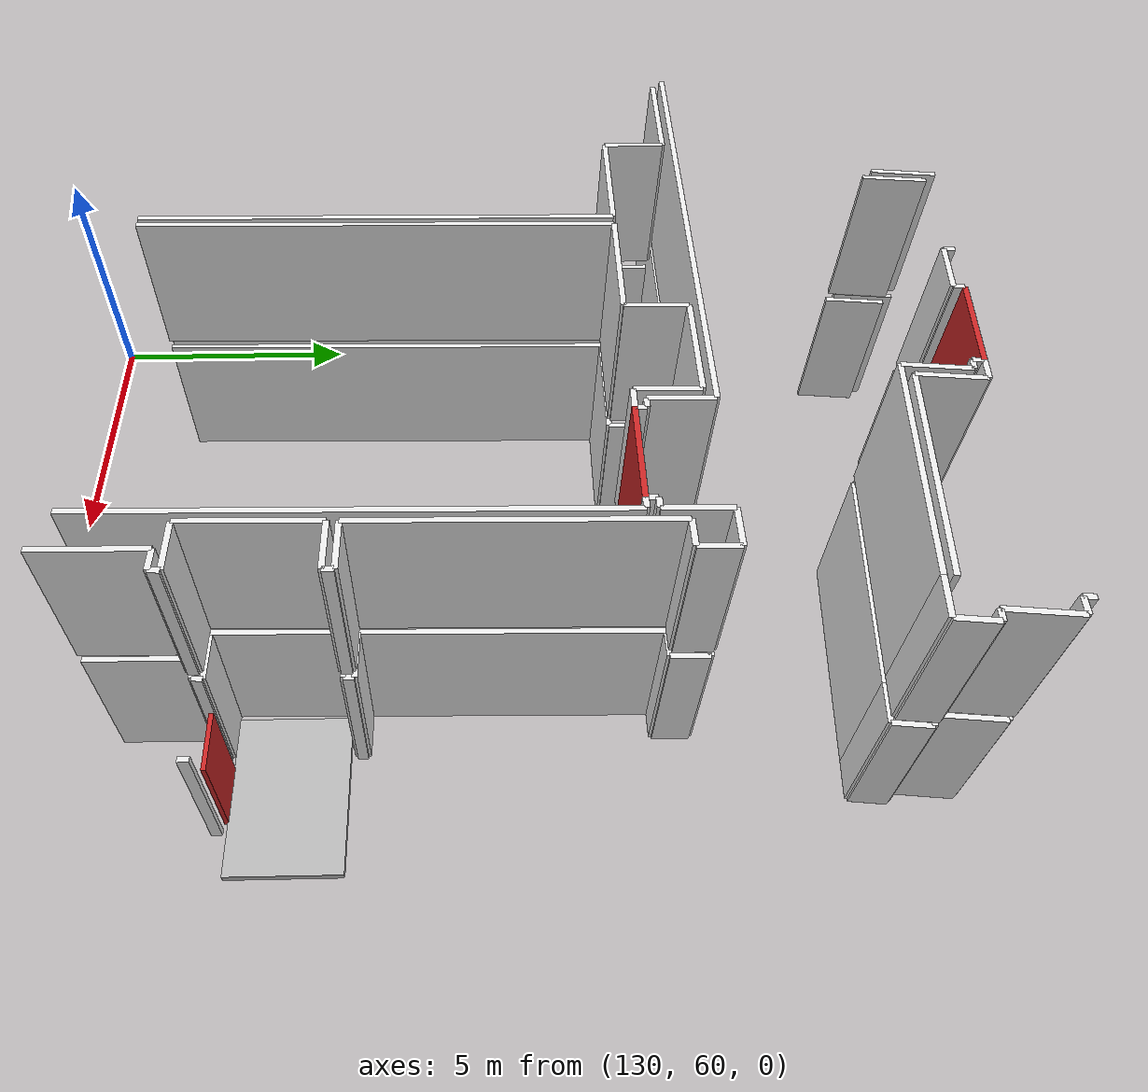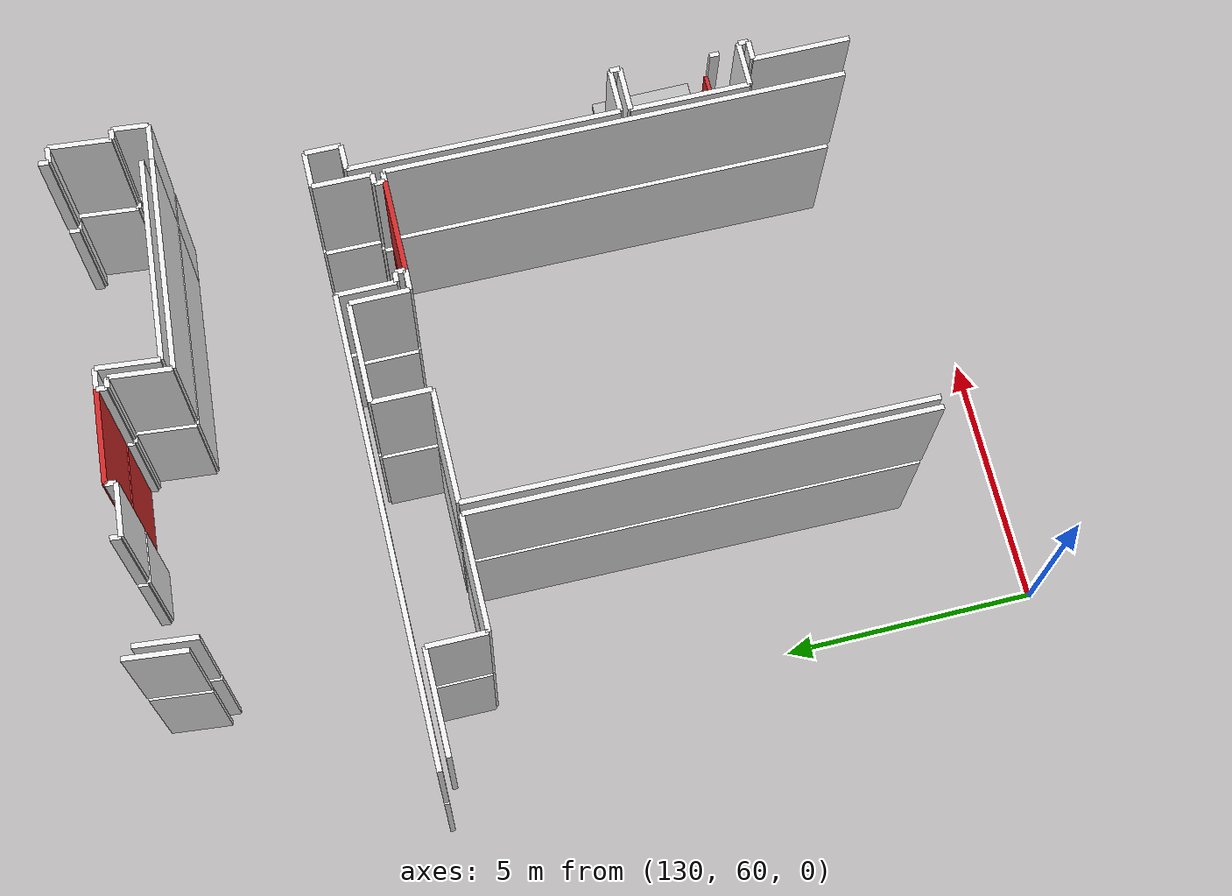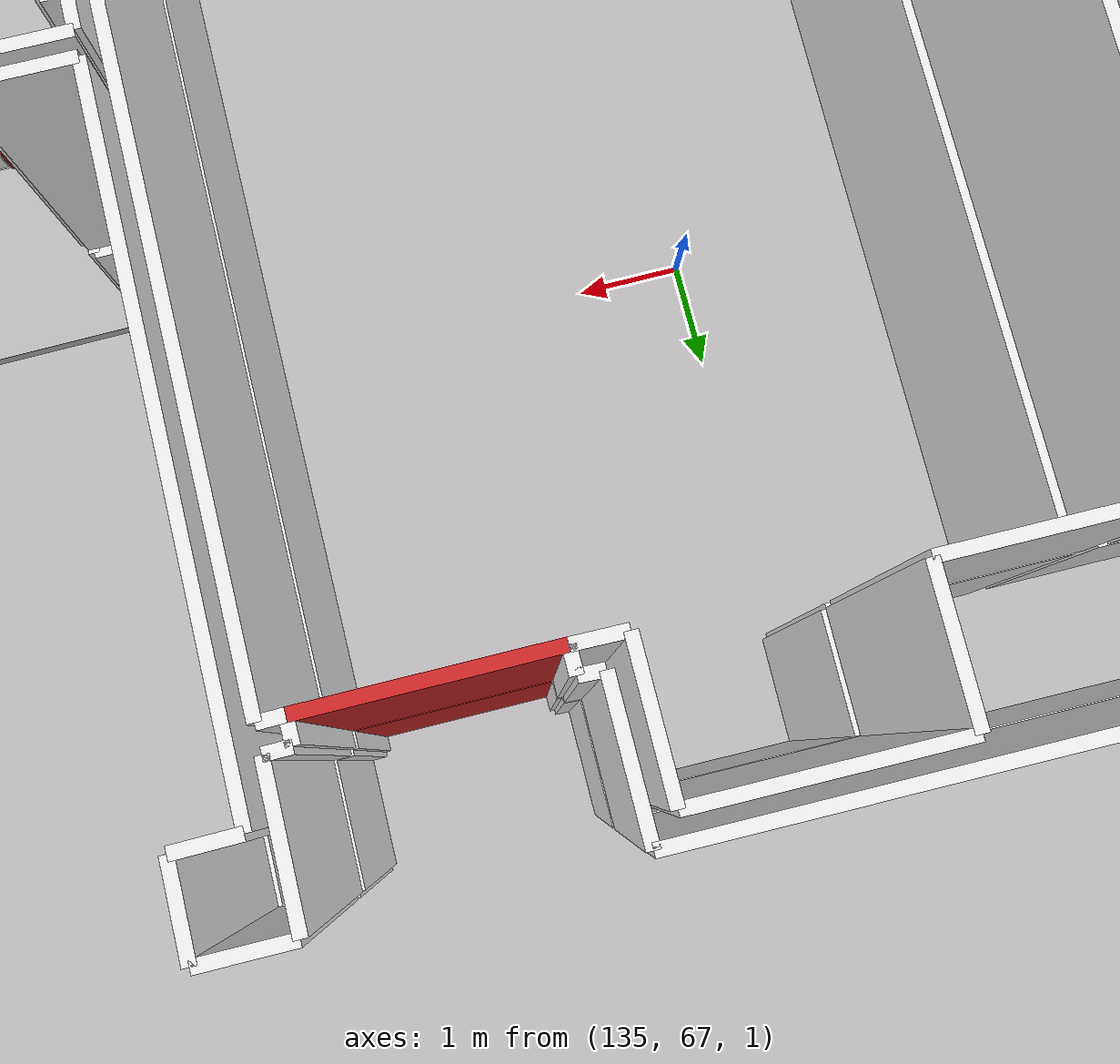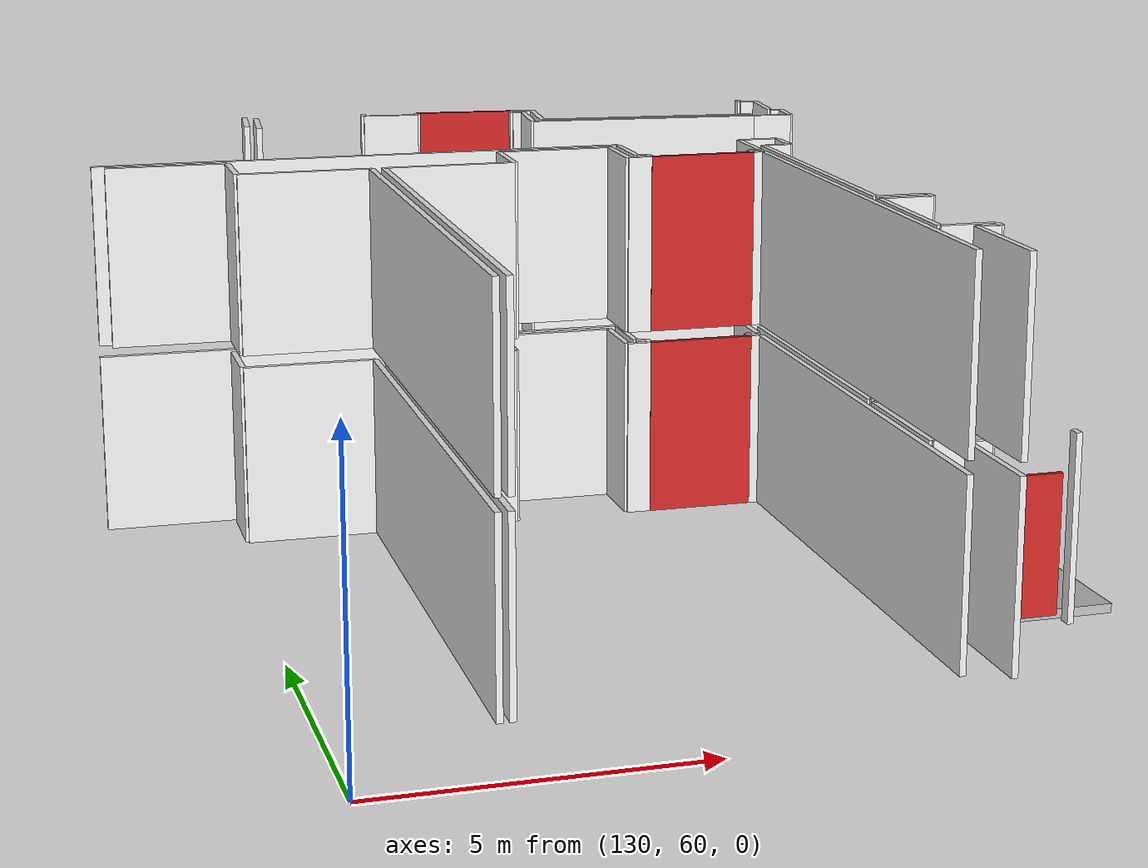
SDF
<sdf version="1.6">
 <world name="default">
  <model name="elevator">
   <pose>141.07 64.822 0.075 0 0 -1.5708</pose>
   <link name="link">
    <inertial><mass>800</mass></inertial>
    <collision name="floor_collision"><geometry><box><size>2.10 2.91 0.15</size></box></geometry></collision>
    <visual name="floor_visual"><geometry><box><size>2.10 2.91 0.15</size></box></geometry></visual>
   </link>
   <link name="door">
    <pose>1.0745 0 1.125 0 0 0</pose>
    <collision name="collision"><geometry><box><size>0.08 1.0 2.25</size></box></geometry></collision>
    <visual name="visual">
     <geometry><box><size>0.08 1.0 2.25</size></box></geometry>
     <material><script><name>Gazebo/Red</name></script></material>
    </visual>
   </link>
   <joint name="door_joint" type="prismatic">
    <parent>link</parent>
    <child>door</child>
    <axis>
     <xyz>0 1 0</xyz>
     <limit><lower>0</lower><upper>1</upper><effort>10</effort></limit>
     <dynamics><damping>2</damping></dynamics>
    </axis>
   </joint>
   <joint name="lift_joint" type="prismatic">
    <parent>world</parent>
    <child>link</child>
    <axis>
     <xyz>0 0 1</xyz>
     <limit><lower>0</lower><upper>10</upper><effort>100000</effort></limit>
     <dynamics><damping>50</damping></dynamics>
    </axis>
    <physics><ode><implicit_spring_damper>1</implicit_spring_damper></ode></physics>
   </joint>
   <plugin filename="libgazebo_ros_elevator.so" name="elevator_plugin">
    <lift_joint>elevator::lift_joint</lift_joint>
    <door_joint>elevator::door_joint</door_joint>
    <floor_height>3.075</floor_height>
    <door_wait_time>5</door_wait_time>
    <topic>/elevator</topic>
   </plugin>
  </model>
  <model name="wall_135.5_76.8_0.0">
   <static>true</static>
   <pose>135.49499999999534 76.79000000003725 1.5 0 0 -0.10022174961299568</pose>
   <link name="link">
    <visual name="visual">
     <geometry><box><size>1.799027515083101 0.1 3</size></box></geometry>
     <material>
      <script><uri>file://media/materials/scripts/gazebo.material</uri><name>Gazebo/Red</name></script>
     </material>
    </visual>
   </link>
  </model>
  <model name="wall_138.2_70.8_0.0">
   <static>true</static>
   <pose>138.2149999999965 70.78000000002794 1.5 0 0 -0.01104927408967263</pose>
   <link name="link">
    <visual name="visual">
     <geometry><box><size>1.810110493862824 0.1 3</size></box></geometry>
     <material>
      <script><uri>file://media/materials/scripts/gazebo.material</uri><name>Gazebo/Red</name></script>
     </material>
    </visual>
   </link>
  </model>
  <model name="wall_134.4_76.9_0.0">
   <static>true</static>
   <pose>134.39999999999418 76.89999999990687 1.5 0 0 3.0419240009977764</pose>
   <link name="link">
    <visual name="visual">
     <geometry><box><size>0.4019950248137912 0.1 3</size></box></geometry>
     <material>
      <script><uri>file://media/materials/scripts/gazebo.material</uri><name>Gazebo/White</name></script>
     </material>
    </visual>
   </link>
  </model>
  <model name="wall_138.6_75.3_0.0">
   <static>true</static>
   <pose>138.63999999998487 75.26000000000931 1.5 0 0 3.0404164645756886</pose>
   <link name="link">
    <visual name="visual">
     <geometry><box><size>3.9602525171943066 0.1 3</size></box></geometry>
     <material>
      <script><uri>file://media/materials/scripts/gazebo.material</uri><name>Gazebo/White</name></script>
     </material>
    </visual>
   </link>
  </model>
  <model name="wall_136.7_76.1_0.0">
   <static>true</static>
   <pose>136.72999999998137 76.06000000005588 1.5 0 0 1.4711276743229451</pose>
   <link name="link">
    <visual name="visual">
     <geometry><box><size>1.2059850747193837 0.1 3</size></box></geometry>
     <material>
      <script><uri>file://media/materials/scripts/gazebo.material</uri><name>Gazebo/White</name></script>
     </material>
    </visual>
   </link>
  </model>
  <model name="wall_136.6_76.7_0.0">
   <static>true</static>
   <pose>136.5899999999965 76.68000000016764 1.5 0 0 3.0419240009977764</pose>
   <link name="link">
    <visual name="visual">
     <geometry><box><size>0.4019950248137912 0.1 3</size></box></geometry>
     <material>
      <script><uri>file://media/materials/scripts/gazebo.material</uri><name>Gazebo/White</name></script>
     </material>
    </visual>
   </link>
  </model>
  <model name="wall_131.3_76.6_0.0">
   <static>true</static>
   <pose>131.34500000000116 76.60000000009313 1.5 0 0 1.4628838380389488</pose>
   <link name="link">
    <visual name="visual">
     <geometry><box><size>1.2070211267550837 0.1 3</size></box></geometry>
     <material>
      <script><uri>file://media/materials/scripts/gazebo.material</uri><name>Gazebo/White</name></script>
     </material>
    </visual>
   </link>
  </model>
  <model name="wall_139.9_66.0_0.0">
   <static>true</static>
   <pose>139.88000000000466 65.99500000011176 1.5 0 0 3.129965270893089</pose>
   <link name="link">
    <visual name="visual">
     <geometry><box><size>0.860058137553213 0.1 3</size></box></geometry>
     <material>
      <script><uri>file://media/materials/scripts/gazebo.material</uri><name>Gazebo/White</name></script>
     </material>
    </visual>
   </link>
  </model>
  <model name="wall_139.4_64.9_0.0">
   <static>true</static>
   <pose>139.43499999999767 64.85000000009313 1.5 0 0 -1.583839065438706</pose>
   <link name="link">
    <visual name="visual">
     <geometry><box><size>2.3001956436670468 0.1 3</size></box></geometry>
     <material>
      <script><uri>file://media/materials/scripts/gazebo.material</uri><name>Gazebo/White</name></script>
     </material>
    </visual>
   </link>
  </model>
  <model name="wall_139.9_63.7_0.0">
   <static>true</static>
   <pose>139.85499999998137 63.69500000006519 1.5 0 0 -0.011493746993381555</pose>
   <link name="link">
    <visual name="visual">
     <geometry><box><size>0.870057469364375 0.1 3</size></box></geometry>
     <material>
      <script><uri>file://media/materials/scripts/gazebo.material</uri><name>Gazebo/White</name></script>
     </material>
    </visual>
   </link>
  </model>
  <model name="wall_141.0_76.8_0.0">
   <static>true</static>
   <pose>140.9899999999907 76.8300000000745 1.5 0 0 -1.6704649792860586</pose>
   <link name="link">
    <visual name="visual">
     <geometry><box><size>0.20099751260961132 0.1 3</size></box></geometry>
     <material>
      <script><uri>file://media/materials/scripts/gazebo.material</uri><name>Gazebo/White</name></script>
     </material>
    </visual>
   </link>
  </model>
  <model name="wall_141.1_76.7_0.0">
   <static>true</static>
   <pose>141.13000000000466 76.71999999997206 1.5 0 0 -0.066568163827335</pose>
   <link name="link">
    <visual name="visual">
     <geometry><box><size>0.30066592761516014 0.1 3</size></box></geometry>
     <material>
      <script><uri>file://media/materials/scripts/gazebo.material</uri><name>Gazebo/White</name></script>
     </material>
    </visual>
   </link>
  </model>
  <model name="wall_141.2_76.1_0.0">
   <static>true</static>
   <pose>141.22000000000116 76.10999999986961 1.5 0 0 -1.6704649793148743</pose>
   <link name="link">
    <visual name="visual">
     <geometry><box><size>1.2059850747251755 0.1 3</size></box></geometry>
     <material>
      <script><uri>file://media/materials/scripts/gazebo.material</uri><name>Gazebo/White</name></script>
     </material>
    </visual>
   </link>
  </model>
  <model name="wall_141.3_75.5_0.0">
   <static>true</static>
   <pose>141.2599999999802 75.5 1.5 0 0 -0.09966865027235515</pose>
   <link name="link">
    <visual name="visual">
     <geometry><box><size>0.20099751238951993 0.1 3</size></box></geometry>
     <material>
      <script><uri>file://media/materials/scripts/gazebo.material</uri><name>Gazebo/White</name></script>
     </material>
    </visual>
   </link>
  </model>
  <model name="wall_141.3_75.1_0.0">
   <static>true</static>
   <pose>141.32499999998254 75.14500000001863 1.5 0 0 -1.6718996984815795</pose>
   <link name="link">
    <visual name="visual">
     <geometry><box><size>0.6935416357843824 0.1 3</size></box></geometry>
     <material>
      <script><uri>file://media/materials/scripts/gazebo.material</uri><name>Gazebo/White</name></script>
     </material>
    </visual>
   </link>
  </model>
  <model name="wall_140.9_74.8_0.0">
   <static>true</static>
   <pose>140.94000000000233 74.83499999996275 1.5 0 0 3.041924000670513</pose>
   <link name="link">
    <visual name="visual">
     <geometry><box><size>0.7034912934617817 0.1 3</size></box></geometry>
     <material>
      <script><uri>file://media/materials/scripts/gazebo.material</uri><name>Gazebo/White</name></script>
     </material>
    </visual>
   </link>
  </model>
  <model name="wall_138.5_75.1_0.0">
   <static>true</static>
   <pose>138.52000000001863 75.07499999995343 1.5 0 0 3.0428807098041264</pose>
   <link name="link">
    <visual name="visual">
     <geometry><box><size>4.1602523961721385 0.1 3</size></box></geometry>
     <material>
      <script><uri>file://media/materials/scripts/gazebo.material</uri><name>Gazebo/White</name></script>
     </material>
    </visual>
   </link>
  </model>
  <model name="wall_136.5_75.9_0.0">
   <static>true</static>
   <pose>136.5100000000093 75.87999999988824 1.5 0 0 1.4711276743229451</pose>
   <link name="link">
    <visual name="visual">
     <geometry><box><size>1.2059850747193837 0.1 3</size></box></geometry>
     <material>
      <script><uri>file://media/materials/scripts/gazebo.material</uri><name>Gazebo/White</name></script>
     </material>
    </visual>
   </link>
  </model>
  <model name="wall_136.5_76.5_0.0">
   <static>true</static>
   <pose>136.47000000000116 76.48999999999069 1.5 0 0 3.0419240010121844</pose>
   <link name="link">
    <visual name="visual">
     <geometry><box><size>0.20099751243585498 0.1 3</size></box></geometry>
     <material>
      <script><uri>file://media/materials/scripts/gazebo.material</uri><name>Gazebo/White</name></script>
     </material>
    </visual>
   </link>
  </model>
  <model name="wall_136.4_76.6_0.0">
   <static>true</static>
   <pose>136.38000000000466 76.60000000009313 1.5 0 0 1.4711276743037347</pose>
   <link name="link">
    <visual name="visual">
     <geometry><box><size>0.20099751260961132 0.1 3</size></box></geometry>
     <material>
      <script><uri>file://media/materials/scripts/gazebo.material</uri><name>Gazebo/White</name></script>
     </material>
    </visual>
   </link>
  </model>
  <model name="wall_134.6_76.8_0.0">
   <static>true</static>
   <pose>134.5899999999965 76.78000000002794 1.5 0 0 -1.6704649792284274</pose>
   <link name="link">
    <visual name="visual">
     <geometry><box><size>0.20099751214046915 0.1 3</size></box></geometry>
     <material>
      <script><uri>file://media/materials/scripts/gazebo.material</uri><name>Gazebo/White</name></script>
     </material>
    </visual>
   </link>
  </model>
  <model name="wall_134.1_76.7_0.0">
   <static>true</static>
   <pose>134.0800000000163 76.72999999998137 1.5 0 0 3.0419240014674718</pose>
   <link name="link">
    <visual name="visual">
     <geometry><box><size>1.004987562075021 0.1 3</size></box></geometry>
     <material>
      <script><uri>file://media/materials/scripts/gazebo.material</uri><name>Gazebo/White</name></script>
     </material>
    </visual>
   </link>
  </model>
  <model name="wall_133.6_76.9_0.0">
   <static>true</static>
   <pose>133.5899999999965 76.87999999988824 1.5 0 0 1.4711276745918913</pose>
   <link name="link">
    <visual name="visual">
     <geometry><box><size>0.20099751260381943 0.1 3</size></box></geometry>
     <material>
      <script><uri>file://media/materials/scripts/gazebo.material</uri><name>Gazebo/White</name></script>
     </material>
    </visual>
   </link>
  </model>
  <model name="wall_131.5_76.4_0.0">
   <static>true</static>
   <pose>131.52999999999884 76.38500000000931 1.5 0 0 -1.6712969258987618</pose>
   <link name="link">
    <visual name="visual">
     <geometry><box><size>1.1960351164910918 0.1 3</size></box></geometry>
     <material>
      <script><uri>file://media/materials/scripts/gazebo.material</uri><name>Gazebo/White</name></script>
     </material>
    </visual>
   </link>
  </model>
  <model name="wall_132.6_72.2_0.0">
   <static>true</static>
   <pose>132.64499999998952 72.2050000000745 1.5 0 0 -0.014491739052994581</pose>
   <link name="link">
    <visual name="visual">
     <geometry><box><size>8.970941979553427 0.1 3</size></box></geometry>
     <material>
      <script><uri>file://media/materials/scripts/gazebo.material</uri><name>Gazebo/White</name></script>
     </material>
    </visual>
   </link>
  </model>
  <model name="wall_137.1_71.6_0.0">
   <static>true</static>
   <pose>137.125 71.57000000006519 1.5 0 0 -1.579568031646505</pose>
   <link name="link">
    <visual name="visual">
     <geometry><box><size>1.1400438589359028 0.1 3</size></box></geometry>
     <material>
      <script><uri>file://media/materials/scripts/gazebo.material</uri><name>Gazebo/White</name></script>
     </material>
    </visual>
   </link>
  </model>
  <model name="wall_137.2_71.0_0.0">
   <static>true</static>
   <pose>137.2149999999965 70.99500000011176 1.5 0 0 -0.052583060437140824</pose>
   <link name="link">
    <visual name="visual">
     <geometry><box><size>0.19026297589498176 0.1 3</size></box></geometry>
     <material>
      <script><uri>file://media/materials/scripts/gazebo.material</uri><name>Gazebo/White</name></script>
     </material>
    </visual>
   </link>
  </model>
  <model name="wall_137.3_70.9_0.0">
   <static>true</static>
   <pose>137.30999999999767 70.89000000013039 1.5 0 0 -1.5707963267948966</pose>
   <link name="link">
    <visual name="visual">
     <geometry><box><size>0.20000000018626451 0.1 3</size></box></geometry>
     <material>
      <script><uri>file://media/materials/scripts/gazebo.material</uri><name>Gazebo/White</name></script>
     </material>
    </visual>
   </link>
  </model>
  <model name="wall_139.1_70.9_0.0">
   <static>true</static>
   <pose>139.11999999999534 70.87000000011176 1.5 0 0 1.5707963267948966</pose>
   <link name="link">
    <visual name="visual">
     <geometry><box><size>0.20000000018626451 0.1 3</size></box></geometry>
     <material>
      <script><uri>file://media/materials/scripts/gazebo.material</uri><name>Gazebo/White</name></script>
     </material>
    </visual>
   </link>
  </model>
  <model name="wall_139.2_71.0_0.0">
   <static>true</static>
   <pose>139.22000000000116 70.97000000020489 1.5 0 0 0.0</pose>
   <link name="link">
    <visual name="visual">
     <geometry><box><size>0.20000000001164153 0.1 3</size></box></geometry>
     <material>
      <script><uri>file://media/materials/scripts/gazebo.material</uri><name>Gazebo/White</name></script>
     </material>
    </visual>
   </link>
  </model>
  <model name="wall_139.3_71.5_0.0">
   <static>true</static>
   <pose>139.3300000000163 71.54000000003725 1.5 0 0 1.553254266716002</pose>
   <link name="link">
    <visual name="visual">
     <geometry><box><size>1.1401754247642402 0.1 3</size></box></geometry>
     <material>
      <script><uri>file://media/materials/scripts/gazebo.material</uri><name>Gazebo/White</name></script>
     </material>
    </visual>
   </link>
  </model>
  <model name="wall_139.7_72.1_0.0">
   <static>true</static>
   <pose>139.68500000002678 72.10499999998137 1.5 0 0 -0.014491738741580868</pose>
   <link name="link">
    <visual name="visual">
     <geometry><box><size>0.6900724599625337 0.1 3</size></box></geometry>
     <material>
      <script><uri>file://media/materials/scripts/gazebo.material</uri><name>Gazebo/White</name></script>
     </material>
    </visual>
   </link>
  </model>
  <model name="wall_140.0_71.8_0.0">
   <static>true</static>
   <pose>140.02500000002328 71.75500000012107 1.5 0 0 -1.5852880658750648</pose>
   <link name="link">
    <visual name="visual">
     <geometry><box><size>0.6900724599077062 0.1 3</size></box></geometry>
     <material>
      <script><uri>file://media/materials/scripts/gazebo.material</uri><name>Gazebo/White</name></script>
     </material>
    </visual>
   </link>
  </model>
  <model name="wall_139.8_71.4_0.0">
   <static>true</static>
   <pose>139.77500000002328 71.41000000014901 1.5 0 0 3.141592653589793</pose>
   <link name="link">
    <visual name="visual">
     <geometry><box><size>0.4899999999906868 0.1 3</size></box></geometry>
     <material>
      <script><uri>file://media/materials/scripts/gazebo.material</uri><name>Gazebo/White</name></script>
     </material>
    </visual>
   </link>
  </model>
  <model name="wall_139.5_68.8_0.0">
   <static>true</static>
   <pose>139.49500000002445 68.80000000004657 1.5 0 0 -1.5842054847435334</pose>
   <link name="link">
    <visual name="visual">
     <geometry><box><size>5.220469327765468 0.1 3</size></box></geometry>
     <material>
      <script><uri>file://media/materials/scripts/gazebo.material</uri><name>Gazebo/White</name></script>
     </material>
    </visual>
   </link>
  </model>
  <model name="wall_139.9_66.2_0.0">
   <static>true</static>
   <pose>139.8850000000093 66.18500000005588 1.5 0 0 -0.011764162887155684</pose>
   <link name="link">
    <visual name="visual">
     <geometry><box><size>0.8500588214682255 0.1 3</size></box></geometry>
     <material>
      <script><uri>file://media/materials/scripts/gazebo.material</uri><name>Gazebo/White</name></script>
     </material>
    </visual>
   </link>
  </model>
  <model name="wall_140.3_66.1_0.0">
   <static>true</static>
   <pose>140.30999999999767 66.08500000019558 1.5 0 0 -1.5707963267948966</pose>
   <link name="link">
    <visual name="visual">
     <geometry><box><size>0.18999999994412065 0.1 3</size></box></geometry>
     <material>
      <script><uri>file://media/materials/scripts/gazebo.material</uri><name>Gazebo/White</name></script>
     </material>
    </visual>
   </link>
  </model>
  <model name="wall_132.5_66.4_0.0">
   <static>true</static>
   <pose>132.4899999999907 66.42999999993481 1.5 0 0 1.557253136818869</pose>
   <link name="link">
    <visual name="visual">
     <geometry><box><size>8.860812603688696 0.1 3</size></box></geometry>
     <material>
      <script><uri>file://media/materials/scripts/gazebo.material</uri><name>Gazebo/White</name></script>
     </material>
    </visual>
   </link>
  </model>
  <model name="wall_131.4_70.9_0.0">
   <static>true</static>
   <pose>131.44999999998254 70.875 1.5 0 0 3.127957134969853</pose>
   <link name="link">
    <visual name="visual">
     <geometry><box><size>2.2002045359617974 0.1 3</size></box></geometry>
     <material>
      <script><uri>file://media/materials/scripts/gazebo.material</uri><name>Gazebo/White</name></script>
     </material>
    </visual>
   </link>
  </model>
  <model name="wall_130.4_71.5_0.0">
   <static>true</static>
   <pose>130.35499999998137 71.45999999996275 1.5 0 0 1.5620246219397054</pose>
   <link name="link">
    <visual name="visual">
     <geometry><box><size>1.1400438584702595 0.1 3</size></box></geometry>
     <material>
      <script><uri>file://media/materials/scripts/gazebo.material</uri><name>Gazebo/White</name></script>
     </material>
    </visual>
   </link>
  </model>
  <model name="wall_132.7_66.4_0.0">
   <static>true</static>
   <pose>132.69000000000233 66.42999999993481 1.5 0 0 1.5549962873031096</pose>
   <link name="link">
    <visual name="visual">
     <geometry><box><size>8.861106025643384 0.1 3</size></box></geometry>
     <material>
      <script><uri>file://media/materials/scripts/gazebo.material</uri><name>Gazebo/White</name></script>
     </material>
    </visual>
   </link>
  </model>
  <model name="wall_133.9_70.8_0.0">
   <static>true</static>
   <pose>133.85500000001048 70.84499999997206 1.5 0 0 -0.013697773279311262</pose>
   <link name="link">
    <visual name="visual">
     <geometry><box><size>2.190205469812799 0.1 3</size></box></geometry>
     <material>
      <script><uri>file://media/materials/scripts/gazebo.material</uri><name>Gazebo/White</name></script>
     </material>
    </visual>
   </link>
  </model>
  <model name="wall_135.0_71.4_0.0">
   <static>true</static>
   <pose>134.95999999999185 71.4000000001397 1.5 0 0 1.5532542667742097</pose>
   <link name="link">
    <visual name="visual">
     <geometry><box><size>1.1401754252288088 0.1 3</size></box></geometry>
     <material>
      <script><uri>file://media/materials/scripts/gazebo.material</uri><name>Gazebo/White</name></script>
     </material>
    </visual>
   </link>
  </model>
  <model name="wall_135.9_72.0_0.0">
   <static>true</static>
   <pose>135.94499999997788 71.9550000000745 1.5 0 0 -0.015383401914200052</pose>
   <link name="link">
    <visual name="visual">
     <geometry><box><size>1.9502307555930525 0.1 3</size></box></geometry>
     <material>
      <script><uri>file://media/materials/scripts/gazebo.material</uri><name>Gazebo/White</name></script>
     </material>
    </visual>
   </link>
  </model>
  <model name="wall_136.9_71.4_0.0">
   <static>true</static>
   <pose>136.91499999997905 71.36999999987893 1.5 0 0 -1.579568031646505</pose>
   <link name="link">
    <visual name="visual">
     <geometry><box><size>1.1400438589359028 0.1 3</size></box></geometry>
     <material>
      <script><uri>file://media/materials/scripts/gazebo.material</uri><name>Gazebo/White</name></script>
     </material>
    </visual>
   </link>
  </model>
  <model name="wall_137.1_70.8_0.0">
   <static>true</static>
   <pose>137.10999999998603 70.7949999999255 1.5 0 0 -0.02499479305902136</pose>
   <link name="link">
    <visual name="visual">
     <geometry><box><size>0.40012498049254075 0.1 3</size></box></geometry>
     <material>
      <script><uri>file://media/materials/scripts/gazebo.material</uri><name>Gazebo/White</name></script>
     </material>
    </visual>
   </link>
  </model>
  <model name="wall_139.2_70.8_0.0">
   <static>true</static>
   <pose>139.22000000000116 70.77000000001863 1.5 0 0 0.0</pose>
   <link name="link">
    <visual name="visual">
     <geometry><box><size>0.20000000001164153 0.1 3</size></box></geometry>
     <material>
      <script><uri>file://media/materials/scripts/gazebo.material</uri><name>Gazebo/White</name></script>
     </material>
    </visual>
   </link>
  </model>
  <model name="wall_139.3_66.3_0.0">
   <static>true</static>
   <pose>139.26500000001397 66.34000000008382 1.5 0 0 -1.583211038835171</pose>
   <link name="link">
    <visual name="visual">
     <geometry><box><size>8.860682817801711 0.1 3</size></box></geometry>
     <material>
      <script><uri>file://media/materials/scripts/gazebo.material</uri><name>Gazebo/White</name></script>
     </material>
    </visual>
   </link>
  </model>
  <model name="wall_139.9_62.6_0.0">
   <static>true</static>
   <pose>139.89999999999418 62.56999999983236 1.5 0 0 1.5601584302397742</pose>
   <link name="link">
    <visual name="visual">
     <geometry><box><size>1.88010637985679 0.1 3</size></box></geometry>
     <material>
      <script><uri>file://media/materials/scripts/gazebo.material</uri><name>Gazebo/White</name></script>
     </material>
    </visual>
   </link>
  </model>
  <model name="wall_140.1_63.5_0.0">
   <static>true</static>
   <pose>140.09500000000116 63.50499999988824 1.5 0 0 -0.027020448579695773</pose>
   <link name="link">
    <visual name="visual">
     <geometry><box><size>0.3701351105139276 0.1 3</size></box></geometry>
     <material>
      <script><uri>file://media/materials/scripts/gazebo.material</uri><name>Gazebo/White</name></script>
     </material>
    </visual>
   </link>
  </model>
  <model name="wall_140.3_63.6_0.0">
   <static>true</static>
   <pose>140.2850000000035 63.59499999997206 1.5 0 0 1.5182132654251468</pose>
   <link name="link">
    <visual name="visual">
     <geometry><box><size>0.19026297584603252 0.1 3</size></box></geometry>
     <material>
      <script><uri>file://media/materials/scripts/gazebo.material</uri><name>Gazebo/White</name></script>
     </material>
    </visual>
   </link>
  </model>
  <model name="wall_141.7_63.6_0.0">
   <static>true</static>
   <pose>141.69000000000233 63.580000000074506 1.5 0 0 -1.5707963267948966</pose>
   <link name="link">
    <visual name="visual">
     <geometry><box><size>0.20000000018626451 0.1 3</size></box></geometry>
     <material>
      <script><uri>file://media/materials/scripts/gazebo.material</uri><name>Gazebo/White</name></script>
     </material>
    </visual>
   </link>
  </model>
  <model name="wall_135.5_76.8_3.2">
   <static>true</static>
   <pose>135.49499999999534 76.79000000003725 4.7 0 0 -0.10022174961299568</pose>
   <link name="link">
    <visual name="visual">
     <geometry><box><size>1.799027515083101 0.1 3</size></box></geometry>
     <material>
      <script><uri>file://media/materials/scripts/gazebo.material</uri><name>Gazebo/Red</name></script>
     </material>
    </visual>
   </link>
  </model>
  <model name="wall_138.2_70.8_3.2">
   <static>true</static>
   <pose>138.2149999999965 70.78000000002794 4.7 0 0 -0.01104927408967263</pose>
   <link name="link">
    <visual name="visual">
     <geometry><box><size>1.810110493862824 0.1 3</size></box></geometry>
     <material>
      <script><uri>file://media/materials/scripts/gazebo.material</uri><name>Gazebo/Red</name></script>
     </material>
    </visual>
   </link>
  </model>
  <model name="wall_138.6_75.3_3.2">
   <static>true</static>
   <pose>138.63999999998487 75.26000000000931 4.7 0 0 3.0404164645756886</pose>
   <link name="link">
    <visual name="visual">
     <geometry><box><size>3.9602525171943066 0.1 3</size></box></geometry>
     <material>
      <script><uri>file://media/materials/scripts/gazebo.material</uri><name>Gazebo/White</name></script>
     </material>
    </visual>
   </link>
  </model>
  <model name="wall_136.7_76.1_3.2">
   <static>true</static>
   <pose>136.72999999998137 76.06000000005588 4.7 0 0 1.4711276743229451</pose>
   <link name="link">
    <visual name="visual">
     <geometry><box><size>1.2059850747193837 0.1 3</size></box></geometry>
     <material>
      <script><uri>file://media/materials/scripts/gazebo.material</uri><name>Gazebo/White</name></script>
     </material>
    </visual>
   </link>
  </model>
  <model name="wall_136.6_76.7_3.2">
   <static>true</static>
   <pose>136.5899999999965 76.68000000016764 4.7 0 0 3.0419240009977764</pose>
   <link name="link">
    <visual name="visual">
     <geometry><box><size>0.4019950248137912 0.1 3</size></box></geometry>
     <material>
      <script><uri>file://media/materials/scripts/gazebo.material</uri><name>Gazebo/White</name></script>
     </material>
    </visual>
   </link>
  </model>
  <model name="wall_131.3_76.6_3.2">
   <static>true</static>
   <pose>131.34500000000116 76.60000000009313 4.7 0 0 1.4628838380389488</pose>
   <link name="link">
    <visual name="visual">
     <geometry><box><size>1.2070211267550837 0.1 3</size></box></geometry>
     <material>
      <script><uri>file://media/materials/scripts/gazebo.material</uri><name>Gazebo/White</name></script>
     </material>
    </visual>
   </link>
  </model>
  <model name="wall_139.9_66.0_3.2">
   <static>true</static>
   <pose>139.88000000000466 65.99500000011176 4.7 0 0 3.129965270893089</pose>
   <link name="link">
    <visual name="visual">
     <geometry><box><size>0.860058137553213 0.1 3</size></box></geometry>
     <material>
      <script><uri>file://media/materials/scripts/gazebo.material</uri><name>Gazebo/White</name></script>
     </material>
    </visual>
   </link>
  </model>
  <model name="wall_139.4_64.9_3.2">
   <static>true</static>
   <pose>139.43499999999767 64.85000000009313 4.7 0 0 -1.583839065438706</pose>
   <link name="link">
    <visual name="visual">
     <geometry><box><size>2.3001956436670468 0.1 3</size></box></geometry>
     <material>
      <script><uri>file://media/materials/scripts/gazebo.material</uri><name>Gazebo/White</name></script>
     </material>
    </visual>
   </link>
  </model>
  <model name="wall_139.9_63.7_3.2">
   <static>true</static>
   <pose>139.85499999998137 63.69500000006519 4.7 0 0 -0.011493746993381555</pose>
   <link name="link">
    <visual name="visual">
     <geometry><box><size>0.870057469364375 0.1 3</size></box></geometry>
     <material>
      <script><uri>file://media/materials/scripts/gazebo.material</uri><name>Gazebo/White</name></script>
     </material>
    </visual>
   </link>
  </model>
  <model name="wall_141.0_76.8_3.2">
   <static>true</static>
   <pose>140.9899999999907 76.8300000000745 4.7 0 0 -1.6704649792860586</pose>
   <link name="link">
    <visual name="visual">
     <geometry><box><size>0.20099751260961132 0.1 3</size></box></geometry>
     <material>
      <script><uri>file://media/materials/scripts/gazebo.material</uri><name>Gazebo/White</name></script>
     </material>
    </visual>
   </link>
  </model>
  <model name="wall_141.1_76.7_3.2">
   <static>true</static>
   <pose>141.13000000000466 76.71999999997206 4.7 0 0 -0.066568163827335</pose>
   <link name="link">
    <visual name="visual">
     <geometry><box><size>0.30066592761516014 0.1 3</size></box></geometry>
     <material>
      <script><uri>file://media/materials/scripts/gazebo.material</uri><name>Gazebo/White</name></script>
     </material>
    </visual>
   </link>
  </model>
  <model name="wall_141.2_76.1_3.2">
   <static>true</static>
   <pose>141.22000000000116 76.10999999986961 4.7 0 0 -1.6704649793148743</pose>
   <link name="link">
    <visual name="visual">
     <geometry><box><size>1.2059850747251755 0.1 3</size></box></geometry>
     <material>
      <script><uri>file://media/materials/scripts/gazebo.material</uri><name>Gazebo/White</name></script>
     </material>
    </visual>
   </link>
  </model>
  <model name="wall_141.3_75.5_3.2">
   <static>true</static>
   <pose>141.2599999999802 75.5 4.7 0 0 -0.09966865027235515</pose>
   <link name="link">
    <visual name="visual">
     <geometry><box><size>0.20099751238951993 0.1 3</size></box></geometry>
     <material>
      <script><uri>file://media/materials/scripts/gazebo.material</uri><name>Gazebo/White</name></script>
     </material>
    </visual>
   </link>
  </model>
  <model name="wall_141.3_75.1_3.2">
   <static>true</static>
   <pose>141.32499999998254 75.14500000001863 4.7 0 0 -1.6718996984815795</pose>
   <link name="link">
    <visual name="visual">
     <geometry><box><size>0.6935416357843824 0.1 3</size></box></geometry>
     <material>
      <script><uri>file://media/materials/scripts/gazebo.material</uri><name>Gazebo/White</name></script>
     </material>
    </visual>
   </link>
  </model>
  <model name="wall_140.9_74.8_3.2">
   <static>true</static>
   <pose>140.94000000000233 74.83499999996275 4.7 0 0 3.041924000670513</pose>
   <link name="link">
    <visual name="visual">
     <geometry><box><size>0.7034912934617817 0.1 3</size></box></geometry>
     <material>
      <script><uri>file://media/materials/scripts/gazebo.material</uri><name>Gazebo/White</name></script>
     </material>
    </visual>
   </link>
  </model>
  <model name="wall_138.5_75.1_3.2">
   <static>true</static>
   <pose>138.52000000001863 75.07499999995343 4.7 0 0 3.0428807098041264</pose>
   <link name="link">
    <visual name="visual">
     <geometry><box><size>4.1602523961721385 0.1 3</size></box></geometry>
     <material>
      <script><uri>file://media/materials/scripts/gazebo.material</uri><name>Gazebo/White</name></script>
     </material>
    </visual>
   </link>
  </model>
  <model name="wall_136.5_75.9_3.2">
   <static>true</static>
   <pose>136.5100000000093 75.87999999988824 4.7 0 0 1.4711276743229451</pose>
   <link name="link">
    <visual name="visual">
     <geometry><box><size>1.2059850747193837 0.1 3</size></box></geometry>
     <material>
      <script><uri>file://media/materials/scripts/gazebo.material</uri><name>Gazebo/White</name></script>
     </material>
    </visual>
   </link>
  </model>
  <model name="wall_136.5_76.5_3.2">
   <static>true</static>
   <pose>136.47000000000116 76.48999999999069 4.7 0 0 3.0419240010121844</pose>
   <link name="link">
    <visual name="visual">
     <geometry><box><size>0.20099751243585498 0.1 3</size></box></geometry>
     <material>
      <script><uri>file://media/materials/scripts/gazebo.material</uri><name>Gazebo/White</name></script>
     </material>
    </visual>
   </link>
  </model>
  <model name="wall_136.4_76.6_3.2">
   <static>true</static>
   <pose>136.38000000000466 76.60000000009313 4.7 0 0 1.4711276743037347</pose>
   <link name="link">
    <visual name="visual">
     <geometry><box><size>0.20099751260961132 0.1 3</size></box></geometry>
     <material>
      <script><uri>file://media/materials/scripts/gazebo.material</uri><name>Gazebo/White</name></script>
     </material>
    </visual>
   </link>
  </model>
  <model name="wall_134.6_76.8_3.2">
   <static>true</static>
   <pose>134.5899999999965 76.78000000002794 4.7 0 0 -1.6704649792284274</pose>
   <link name="link">
    <visual name="visual">
     <geometry><box><size>0.20099751214046915 0.1 3</size></box></geometry>
     <material>
      <script><uri>file://media/materials/scripts/gazebo.material</uri><name>Gazebo/White</name></script>
     </material>
    </visual>
   </link>
  </model>
  <model name="wall_134.1_76.7_3.2">
   <static>true</static>
   <pose>134.0800000000163 76.72999999998137 4.7 0 0 3.0419240014674718</pose>
   <link name="link">
    <visual name="visual">
     <geometry><box><size>1.004987562075021 0.1 3</size></box></geometry>
     <material>
      <script><uri>file://media/materials/scripts/gazebo.material</uri><name>Gazebo/White</name></script>
     </material>
    </visual>
   </link>
  </model>
  <model name="wall_133.6_76.9_3.2">
   <static>true</static>
   <pose>133.5899999999965 76.87999999988824 4.7 0 0 1.4711276745918913</pose>
   <link name="link">
    <visual name="visual">
     <geometry><box><size>0.20099751260381943 0.1 3</size></box></geometry>
     <material>
      <script><uri>file://media/materials/scripts/gazebo.material</uri><name>Gazebo/White</name></script>
     </material>
    </visual>
   </link>
  </model>
  <model name="wall_131.5_76.4_3.2">
   <static>true</static>
   <pose>131.52999999999884 76.38500000000931 4.7 0 0 -1.6712969258987618</pose>
   <link name="link">
    <visual name="visual">
     <geometry><box><size>1.1960351164910918 0.1 3</size></box></geometry>
     <material>
      <script><uri>file://media/materials/scripts/gazebo.material</uri><name>Gazebo/White</name></script>
     </material>
    </visual>
   </link>
  </model>
  <model name="wall_132.6_72.2_3.2">
   <static>true</static>
   <pose>132.64499999998952 72.2050000000745 4.7 0 0 -0.014491739052994581</pose>
   <link name="link">
    <visual name="visual">
     <geometry><box><size>8.970941979553427 0.1 3</size></box></geometry>
     <material>
      <script><uri>file://media/materials/scripts/gazebo.material</uri><name>Gazebo/White</name></script>
     </material>
    </visual>
   </link>
  </model>
  <model name="wall_137.1_71.6_3.2">
   <static>true</static>
   <pose>137.125 71.57000000006519 4.7 0 0 -1.579568031646505</pose>
   <link name="link">
    <visual name="visual">
     <geometry><box><size>1.1400438589359028 0.1 3</size></box></geometry>
     <material>
      <script><uri>file://media/materials/scripts/gazebo.material</uri><name>Gazebo/White</name></script>
     </material>
    </visual>
   </link>
  </model>
  <model name="wall_137.2_71.0_3.2">
   <static>true</static>
   <pose>137.2149999999965 70.99500000011176 4.7 0 0 -0.052583060437140824</pose>
   <link name="link">
    <visual name="visual">
     <geometry><box><size>0.19026297589498176 0.1 3</size></box></geometry>
     <material>
      <script><uri>file://media/materials/scripts/gazebo.material</uri><name>Gazebo/White</name></script>
     </material>
    </visual>
   </link>
  </model>
  <model name="wall_137.3_70.9_3.2">
   <static>true</static>
   <pose>137.30999999999767 70.89000000013039 4.7 0 0 -1.5707963267948966</pose>
   <link name="link">
    <visual name="visual">
     <geometry><box><size>0.20000000018626451 0.1 3</size></box></geometry>
     <material>
      <script><uri>file://media/materials/scripts/gazebo.material</uri><name>Gazebo/White</name></script>
     </material>
    </visual>
   </link>
  </model>
  <model name="wall_139.1_70.9_3.2">
   <static>true</static>
   <pose>139.11999999999534 70.87000000011176 4.7 0 0 1.5707963267948966</pose>
   <link name="link">
    <visual name="visual">
     <geometry><box><size>0.20000000018626451 0.1 3</size></box></geometry>
     <material>
      <script><uri>file://media/materials/scripts/gazebo.material</uri><name>Gazebo/White</name></script>
     </material>
    </visual>
   </link>
  </model>
  <model name="wall_139.2_71.0_3.2">
   <static>true</static>
   <pose>139.22000000000116 70.97000000020489 4.7 0 0 0.0</pose>
   <link name="link">
    <visual name="visual">
     <geometry><box><size>0.20000000001164153 0.1 3</size></box></geometry>
     <material>
      <script><uri>file://media/materials/scripts/gazebo.material</uri><name>Gazebo/White</name></script>
     </material>
    </visual>
   </link>
  </model>
  <model name="wall_139.3_71.5_3.2">
   <static>true</static>
   <pose>139.3300000000163 71.54000000003725 4.7 0 0 1.553254266716002</pose>
   <link name="link">
    <visual name="visual">
     <geometry><box><size>1.1401754247642402 0.1 3</size></box></geometry>
     <material>
      <script><uri>file://media/materials/scripts/gazebo.material</uri><name>Gazebo/White</name></script>
     </material>
    </visual>
   </link>
  </model>
  <model name="wall_139.7_72.1_3.2">
   <static>true</static>
   <pose>139.68500000002678 72.10499999998137 4.7 0 0 -0.014491738741580868</pose>
   <link name="link">
    <visual name="visual">
     <geometry><box><size>0.6900724599625337 0.1 3</size></box></geometry>
     <material>
      <script><uri>file://media/materials/scripts/gazebo.material</uri><name>Gazebo/White</name></script>
     </material>
    </visual>
   </link>
  </model>
  <model name="wall_140.0_71.8_3.2">
   <static>true</static>
   <pose>140.02500000002328 71.75500000012107 4.7 0 0 -1.5852880658750648</pose>
   <link name="link">
    <visual name="visual">
     <geometry><box><size>0.6900724599077062 0.1 3</size></box></geometry>
     <material>
      <script><uri>file://media/materials/scripts/gazebo.material</uri><name>Gazebo/White</name></script>
     </material>
    </visual>
   </link>
  </model>
  <model name="wall_139.8_71.4_3.2">
   <static>true</static>
   <pose>139.77500000002328 71.41000000014901 4.7 0 0 3.141592653589793</pose>
   <link name="link">
    <visual name="visual">
     <geometry><box><size>0.4899999999906868 0.1 3</size></box></geometry>
     <material>
      <script><uri>file://media/materials/scripts/gazebo.material</uri><name>Gazebo/White</name></script>
     </material>
    </visual>
   </link>
  </model>
  <model name="wall_139.5_68.8_3.2">
   <static>true</static>
   <pose>139.49500000002445 68.80000000004657 4.7 0 0 -1.5842054847435334</pose>
   <link name="link">
    <visual name="visual">
     <geometry><box><size>5.220469327765468 0.1 3</size></box></geometry>
     <material>
      <script><uri>file://media/materials/scripts/gazebo.material</uri><name>Gazebo/White</name></script>
     </material>
    </visual>
   </link>
  </model>
  <model name="wall_139.9_66.2_3.2">
   <static>true</static>
   <pose>139.8850000000093 66.18500000005588 4.7 0 0 -0.011764162887155684</pose>
   <link name="link">
    <visual name="visual">
     <geometry><box><size>0.8500588214682255 0.1 3</size></box></geometry>
     <material>
      <script><uri>file://media/materials/scripts/gazebo.material</uri><name>Gazebo/White</name></script>
     </material>
    </visual>
   </link>
  </model>
  <model name="wall_140.3_66.1_3.2">
   <static>true</static>
   <pose>140.30999999999767 66.08500000019558 4.7 0 0 -1.5707963267948966</pose>
   <link name="link">
    <visual name="visual">
     <geometry><box><size>0.18999999994412065 0.1 3</size></box></geometry>
     <material>
      <script><uri>file://media/materials/scripts/gazebo.material</uri><name>Gazebo/White</name></script>
     </material>
    </visual>
   </link>
  </model>
  <model name="wall_132.5_66.4_3.2">
   <static>true</static>
   <pose>132.4899999999907 66.42999999993481 4.7 0 0 1.557253136818869</pose>
   <link name="link">
    <visual name="visual">
     <geometry><box><size>8.860812603688696 0.1 3</size></box></geometry>
     <material>
      <script><uri>file://media/materials/scripts/gazebo.material</uri><name>Gazebo/White</name></script>
     </material>
    </visual>
   </link>
  </model>
  <model name="wall_131.4_70.9_3.2">
   <static>true</static>
   <pose>131.44999999998254 70.875 4.7 0 0 3.127957134969853</pose>
   <link name="link">
    <visual name="visual">
     <geometry><box><size>2.2002045359617974 0.1 3</size></box></geometry>
     <material>
      <script><uri>file://media/materials/scripts/gazebo.material</uri><name>Gazebo/White</name></script>
     </material>
    </visual>
   </link>
  </model>
  <model name="wall_130.4_71.5_3.2">
   <static>true</static>
   <pose>130.35499999998137 71.45999999996275 4.7 0 0 1.5620246219397054</pose>
   <link name="link">
    <visual name="visual">
     <geometry><box><size>1.1400438584702595 0.1 3</size></box></geometry>
     <material>
      <script><uri>file://media/materials/scripts/gazebo.material</uri><name>Gazebo/White</name></script>
     </material>
    </visual>
   </link>
  </model>
  <model name="wall_129.4_72.0_3.2">
   <static>true</static>
   <pose>129.35999999998603 72.0449999999255 4.7 0 0 3.126593778307587</pose>
   <link name="link">
    <visual name="visual">
     <geometry><box><size>2.0002249873490845 0.1 3</size></box></geometry>
     <material>
      <script><uri>file://media/materials/scripts/gazebo.material</uri><name>Gazebo/White</name></script>
     </material>
    </visual>
   </link>
  </model>
  <model name="wall_132.7_66.4_3.2">
   <static>true</static>
   <pose>132.69000000000233 66.42999999993481 4.7 0 0 1.5549962873031096</pose>
   <link name="link">
    <visual name="visual">
     <geometry><box><size>8.861106025643384 0.1 3</size></box></geometry>
     <material>
      <script><uri>file://media/materials/scripts/gazebo.material</uri><name>Gazebo/White</name></script>
     </material>
    </visual>
   </link>
  </model>
  <model name="wall_133.9_70.8_3.2">
   <static>true</static>
   <pose>133.85500000001048 70.84499999997206 4.7 0 0 -0.013697773279311262</pose>
   <link name="link">
    <visual name="visual">
     <geometry><box><size>2.190205469812799 0.1 3</size></box></geometry>
     <material>
      <script><uri>file://media/materials/scripts/gazebo.material</uri><name>Gazebo/White</name></script>
     </material>
    </visual>
   </link>
  </model>
  <model name="wall_135.0_71.4_3.2">
   <static>true</static>
   <pose>134.95999999999185 71.4000000001397 4.7 0 0 1.5532542667742097</pose>
   <link name="link">
    <visual name="visual">
     <geometry><box><size>1.1401754252288088 0.1 3</size></box></geometry>
     <material>
      <script><uri>file://media/materials/scripts/gazebo.material</uri><name>Gazebo/White</name></script>
     </material>
    </visual>
   </link>
  </model>
  <model name="wall_135.9_72.0_3.2">
   <static>true</static>
   <pose>135.94499999997788 71.9550000000745 4.7 0 0 -0.015383401914200052</pose>
   <link name="link">
    <visual name="visual">
     <geometry><box><size>1.9502307555930525 0.1 3</size></box></geometry>
     <material>
      <script><uri>file://media/materials/scripts/gazebo.material</uri><name>Gazebo/White</name></script>
     </material>
    </visual>
   </link>
  </model>
  <model name="wall_136.9_71.4_3.2">
   <static>true</static>
   <pose>136.91499999997905 71.36999999987893 4.7 0 0 -1.579568031646505</pose>
   <link name="link">
    <visual name="visual">
     <geometry><box><size>1.1400438589359028 0.1 3</size></box></geometry>
     <material>
      <script><uri>file://media/materials/scripts/gazebo.material</uri><name>Gazebo/White</name></script>
     </material>
    </visual>
   </link>
  </model>
  <model name="wall_137.1_70.8_3.2">
   <static>true</static>
   <pose>137.10999999998603 70.7949999999255 4.7 0 0 -0.02499479305902136</pose>
   <link name="link">
    <visual name="visual">
     <geometry><box><size>0.40012498049254075 0.1 3</size></box></geometry>
     <material>
      <script><uri>file://media/materials/scripts/gazebo.material</uri><name>Gazebo/White</name></script>
     </material>
    </visual>
   </link>
  </model>
  <model name="wall_139.2_70.8_3.2">
   <static>true</static>
   <pose>139.22000000000116 70.77000000001863 4.7 0 0 0.0</pose>
   <link name="link">
    <visual name="visual">
     <geometry><box><size>0.20000000001164153 0.1 3</size></box></geometry>
     <material>
      <script><uri>file://media/materials/scripts/gazebo.material</uri><name>Gazebo/White</name></script>
     </material>
    </visual>
   </link>
  </model>
  <model name="wall_139.3_66.3_3.2">
   <static>true</static>
   <pose>139.26500000001397 66.34000000008382 4.7 0 0 -1.583211038835171</pose>
   <link name="link">
    <visual name="visual">
     <geometry><box><size>8.860682817801711 0.1 3</size></box></geometry>
     <material>
      <script><uri>file://media/materials/scripts/gazebo.material</uri><name>Gazebo/White</name></script>
     </material>
    </visual>
   </link>
  </model>
  <model name="wall_139.9_62.6_3.2">
   <static>true</static>
   <pose>139.89999999999418 62.56999999983236 4.7 0 0 1.5601584302397742</pose>
   <link name="link">
    <visual name="visual">
     <geometry><box><size>1.88010637985679 0.1 3</size></box></geometry>
     <material>
      <script><uri>file://media/materials/scripts/gazebo.material</uri><name>Gazebo/White</name></script>
     </material>
    </visual>
   </link>
  </model>
  <model name="wall_140.1_63.5_3.2">
   <static>true</static>
   <pose>140.09500000000116 63.50499999988824 4.7 0 0 -0.027020448579695773</pose>
   <link name="link">
    <visual name="visual">
     <geometry><box><size>0.3701351105139276 0.1 3</size></box></geometry>
     <material>
      <script><uri>file://media/materials/scripts/gazebo.material</uri><name>Gazebo/White</name></script>
     </material>
    </visual>
   </link>
  </model>
  <model name="wall_140.3_63.6_3.2">
   <static>true</static>
   <pose>140.2850000000035 63.59499999997206 4.7 0 0 1.5182132654251468</pose>
   <link name="link">
    <visual name="visual">
     <geometry><box><size>0.19026297584603252 0.1 3</size></box></geometry>
     <material>
      <script><uri>file://media/materials/scripts/gazebo.material</uri><name>Gazebo/White</name></script>
     </material>
    </visual>
   </link>
  </model>
 </world>
</sdf>
